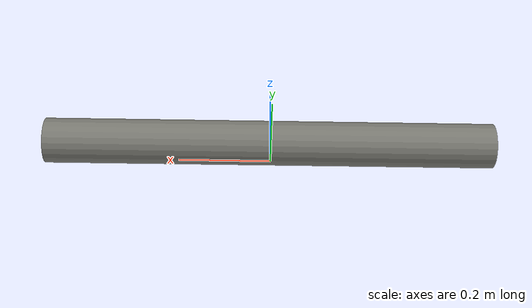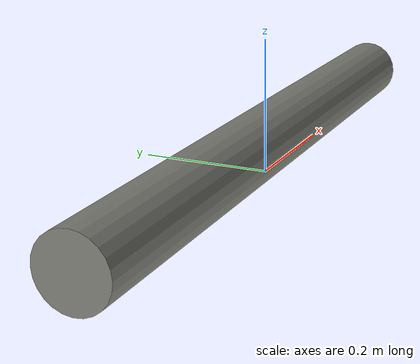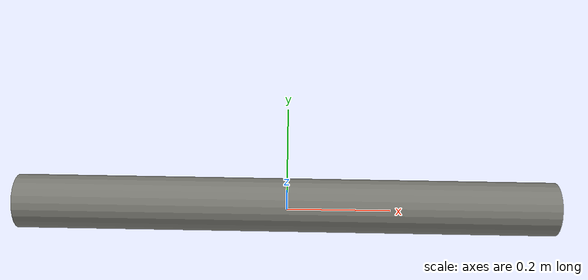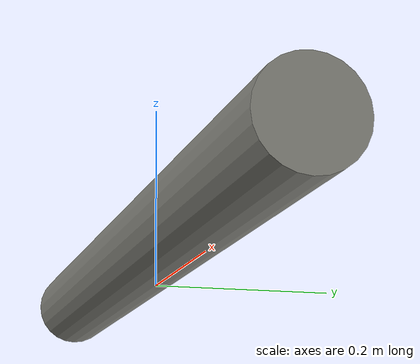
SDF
<?xml version="1.0"?>
<!--
  Grey sewer pipe — horizontal PVC-style pipe segment, floor-mounted.
  Cylinder: 0.10 m diameter × 1.0 m long, lying along x-axis on the floor.
  Grey color with slight gloss.
-->
<sdf version="1.9">
  <model name="pipe_sewer_floor">
    <static>true</static>

    <plugin filename="gz-sim-label-system" name="gz::sim::systems::Label">
      <label>1</label>
    </plugin>

    <link name="pipe">
      <pose>0 0 0.05 0 1.5708 0</pose>
      <visual name="vis">
        <geometry>
          <cylinder><radius>0.05</radius><length>1.0</length></cylinder>
        </geometry>
        <material>
          <ambient>0.45 0.45 0.42 1</ambient>
          <diffuse>0.50 0.50 0.47 1</diffuse>
          <specular>0.15 0.15 0.15 1</specular>
        </material>
      </visual>
      <collision name="col">
        <geometry>
          <cylinder><radius>0.05</radius><length>1.0</length></cylinder>
        </geometry>
      </collision>
    </link>

  </model>
</sdf>
